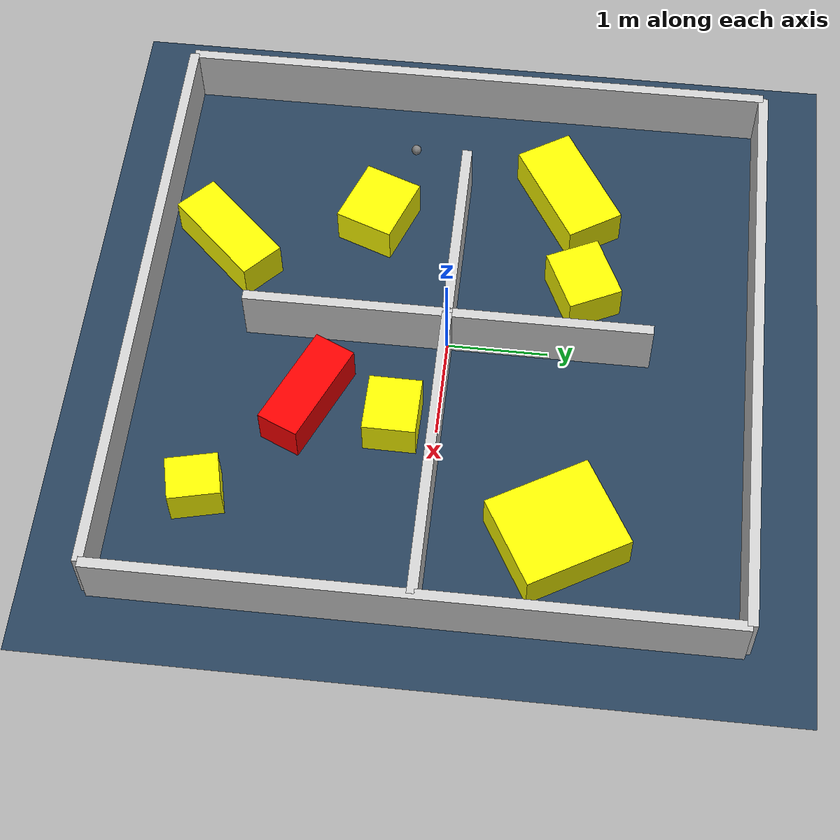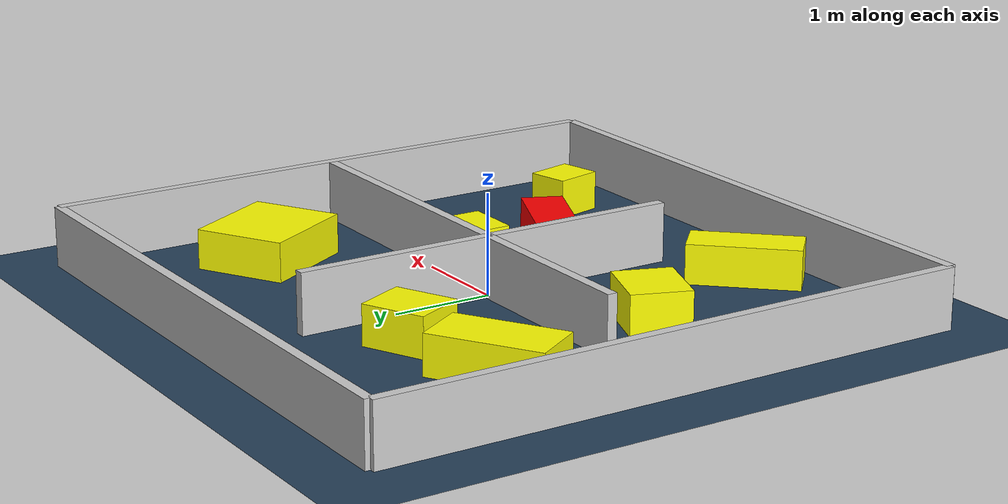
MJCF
<?xml version="1.0" ?>
<mujoco model="generated_environment">
  <option timestep="0.01" integrator="RK4" cone="elliptic"/>
  <default>
    <geom density="1"/>
  </default>
  <asset>
    <texture builtin="gradient" height="3072" rgb1="0.3 0.5 0.7" rgb2="0 0 0" type="skybox" width="512"/>
    <texture builtin="checker" height="300" mark="edge" markrgb="0.8 0.8 0.8" name="groundplane" rgb1="0.2 0.3 0.4" rgb2="0.1 0.2 0.3" type="2d" width="300"/>
    <material name="groundplane" reflectance="0.2" texrepeat="5 5" texture="groundplane" texuniform="true"/>
    <material name="robot" rgba="0.0 1.0 0.0 1"/>
  </asset>
  <worldbody>
    <light dir="0 0 -1" directional="true" pos="0 0 1.5"/>
    <geom condim="4" friction="1.0 0.005 0.001" material="groundplane" name="floor" size="0 0 0.05" type="plane"/>
    <body name="walls">
      <geom name="wall_1" condim="4" pos="-3.0 0.0 0.3" rgba="0.800000011920929 0.800000011920929 0.800000011920929 1.0" size="0.05 3.0 0.3" type="box"/>
      <geom name="wall_2" condim="4" pos="3.0 0.0 0.3" rgba="0.800000011920929 0.800000011920929 0.800000011920929 1.0" size="0.05 3.0 0.3" type="box"/>
      <geom name="wall_3" condim="4" pos="0.0 -3.0 0.3" rgba="0.800000011920929 0.800000011920929 0.800000011920929 1.0" size="3.0 0.05 0.3" type="box"/>
      <geom name="wall_4" condim="4" pos="0.0 3.0 0.3" rgba="0.800000011920929 0.800000011920929 0.800000011920929 1.0" size="3.0 0.05 0.3" type="box"/>
      <geom name="wall_5" condim="4" pos="1.5 0.0 0.3" rgba="0.800000011920929 0.800000011920929 0.800000011920929 1.0" size="1.5 0.05 0.3" type="box"/>
      <geom name="wall_6" condim="4" pos="-1.0 0.0 0.3" rgba="0.800000011920929 0.800000011920929 0.800000011920929 1.0" size="1.0 0.05 0.3" type="box"/>
      <geom name="wall_7" condim="4" pos="0.0 -1.0 0.3" rgba="0.800000011920929 0.800000011920929 0.800000011920929 1.0" size="0.05 1.0 0.3" type="box"/>
      <geom name="wall_8" condim="4" pos="0.0 1.0 0.3" rgba="0.800000011920929 0.800000011920929 0.800000011920929 1.0" size="0.05 1.0 0.3" type="box"/>
    </body>
    <body name="robot">
      <joint name="joint_x" type="slide" pos="0 0 0" axis="1 0 0"/>
      <joint name="joint_y" type="slide" pos="0 0 0" axis="0 1 0"/>
      <geom name="robot" type="sphere" pos="-2.2675025600456467 -0.5597990158466501 0.2" size="0.05" mass="5." friction="1.0 0.005 0.0001" condim="4"/>
      <site name="sensor_ball"/>
    </body>
    <body name="obstacle_1_static">
      <geom name="obstacle_1_static" condim="4" pos="0.8264234004774571 -1.2657018281401402 0.2" euler="0 0 156.03579641446154" friction="1.0 0.005 0.001" rgba="1 0 0 1" size="0.5268140753079902 0.21201809499604352 0.2" type="box"/>
    </body>
    <body name="obstacle_2_movable">
      <geom name="obstacle_2_movable" condim="4" pos="2.0458205604460202 1.2340248414715425 0.2" euler="0 0 29.904006638082667" friction="1.0 0.005 0.001" rgba="1 1 0 1" size="0.4665146627390162 0.5314488728040582 0.2" type="box" mass="0.1"/>
      <joint type="free"/>
    </body>
    <body name="obstacle_3_movable">
      <geom name="obstacle_3_movable" condim="4" pos="-0.7329547858254575 1.2886606155915046 0.2" euler="0 0 25.445804948335095" friction="1.0 0.005 0.001" rgba="1 1 0 1" size="0.3257859578198171 0.2754427329231445 0.2" type="box" mass="0.1"/>
      <joint type="free"/>
    </body>
    <body name="obstacle_4_movable">
      <geom name="obstacle_4_movable" condim="4" pos="-1.4255076998045317 -0.8475992685572087 0.2" euler="0 0 159.54644250869563" friction="1.0 0.005 0.001" rgba="1 1 0 1" size="0.3434864107634416 0.2966585222771967 0.2" type="box" mass="0.1"/>
      <joint type="free"/>
    </body>
    <body name="obstacle_5_movable">
      <geom name="obstacle_5_movable" condim="4" pos="1.9249819101698367 -2.1729815710960505 0.2" euler="0 0 283.10144677030223" friction="1.0 0.005 0.001" rgba="1 1 0 1" size="0.25052349877306057 0.21533930669425672 0.2" type="box" mass="0.1"/>
      <joint type="free"/>
    </body>
    <body name="obstacle_6_movable">
      <geom name="obstacle_6_movable" condim="4" pos="-0.9401913879357091 -2.3146431161966845 0.2" euler="0 0 226.66176118497242" friction="1.0 0.005 0.001" rgba="1 1 0 1" size="0.5544355604391944 0.2280958645309188 0.2" type="box" mass="0.1"/>
      <joint type="free"/>
    </body>
    <body name="obstacle_7_movable">
      <geom name="obstacle_7_movable" condim="4" pos="-1.8260991106521698 1.067123069734354 0.2" euler="0 0 121.69456805802294" friction="1.0 0.005 0.001" rgba="1 1 0 1" size="0.2916886309743213 0.5727944760017845 0.2" type="box" mass="0.1"/>
      <joint type="free"/>
    </body>
    <body name="obstacle_8_movable">
      <geom name="obstacle_8_movable" condim="4" pos="0.9622323283977114 -0.4229255393608389 0.2" euler="0 0 179.32260897221357" friction="1.0 0.005 0.001" rgba="1 1 0 1" size="0.2881046100416556 0.25707095564097837 0.2" type="box" mass="0.1"/>
      <joint type="free"/>
    </body>
  </worldbody>
  <actuator>
    <motor name="actuator_x" joint="joint_x" gear="1" ctrlrange="-1 1"/>
    <motor name="actuator_y" joint="joint_y" gear="1" ctrlrange="-1 1"/>
  </actuator>
</mujoco>
